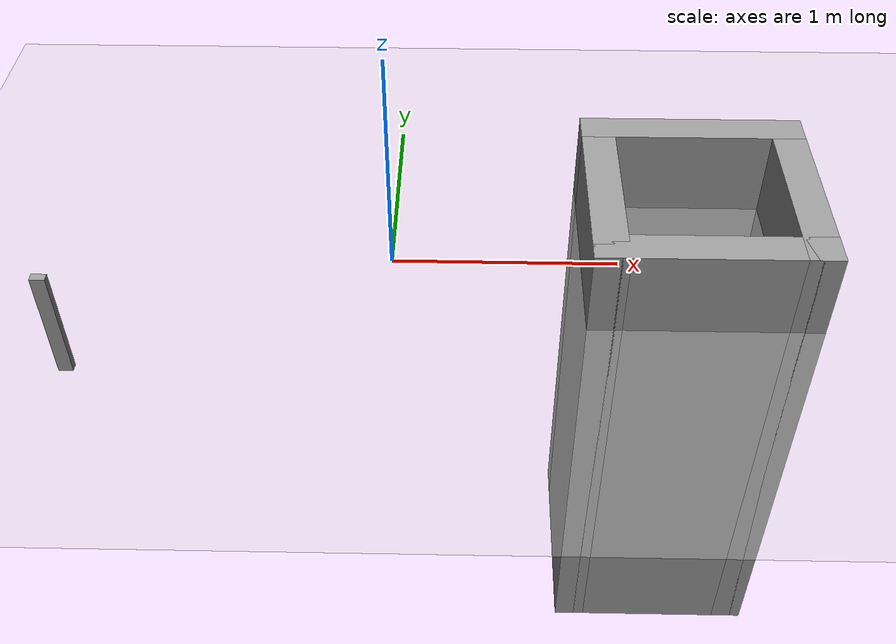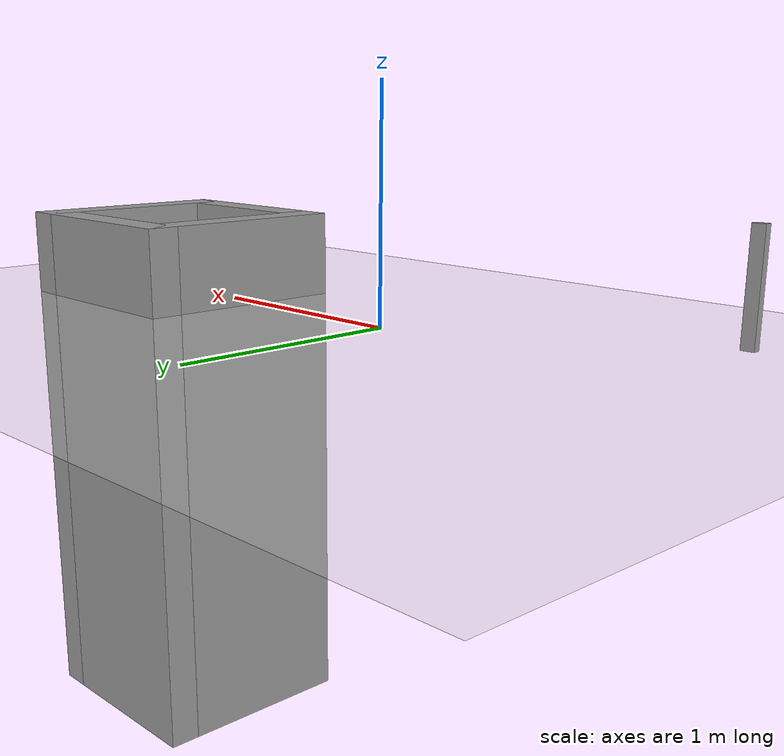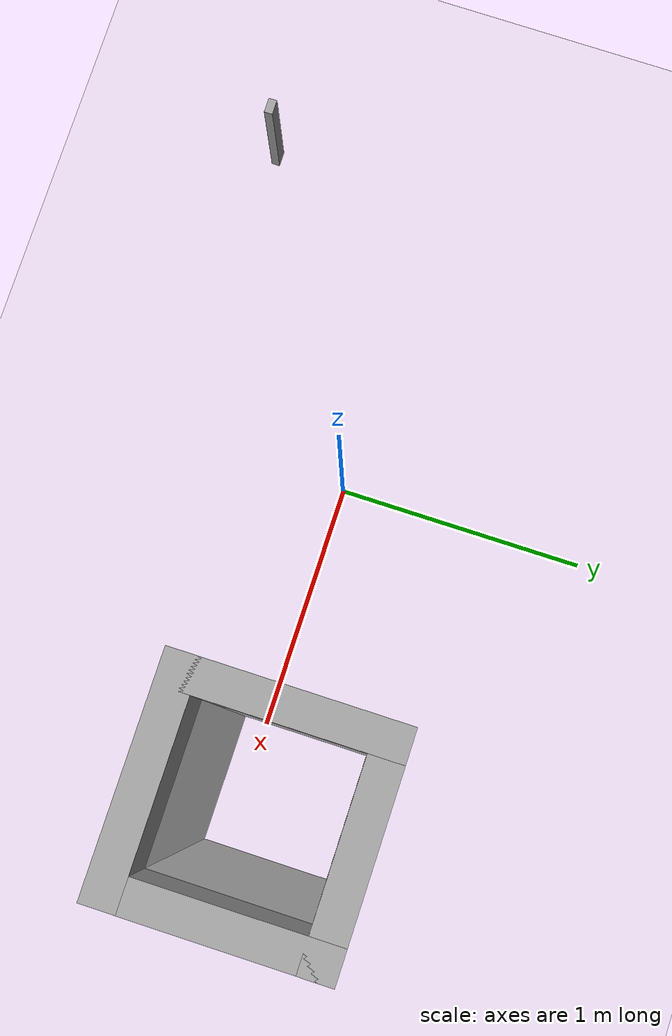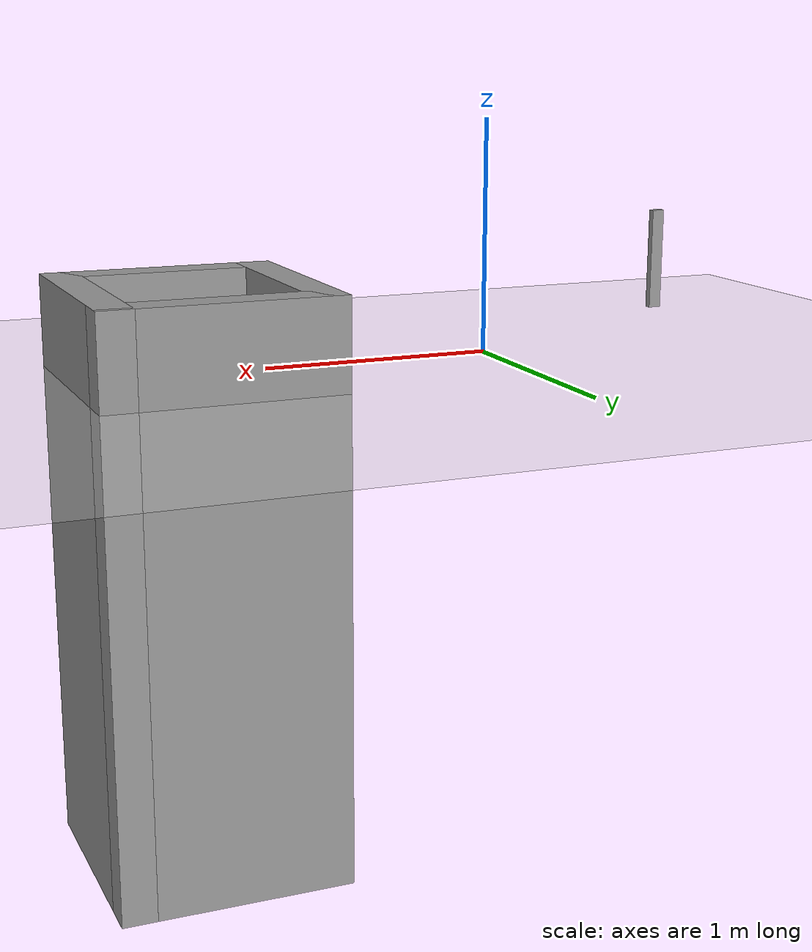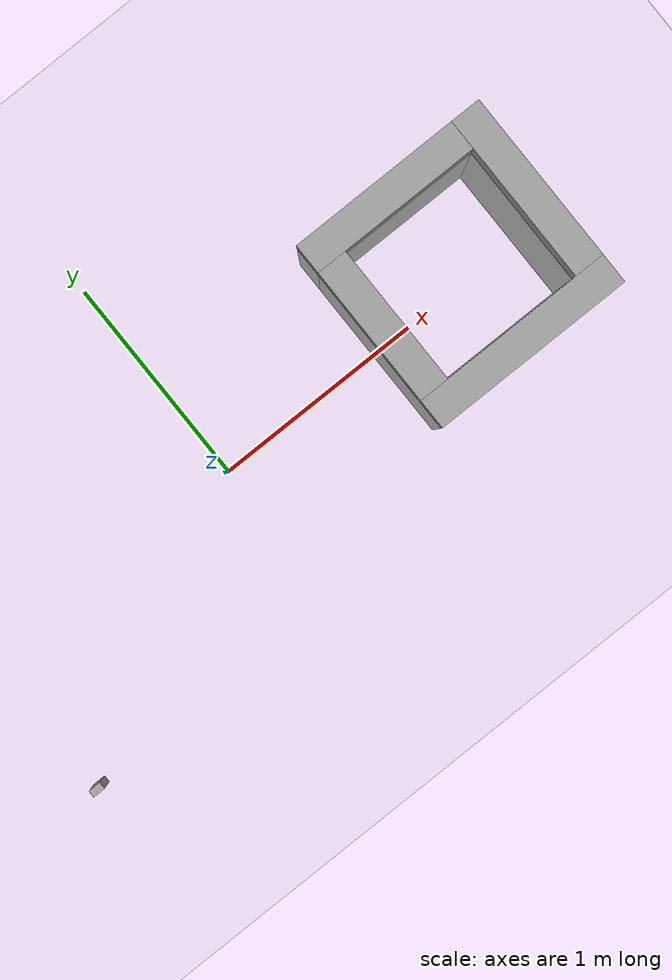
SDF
<sdf version="1.6">
 <world name="default">
  <light name="sun" type="directional">
   <pose>0 0 10 0 -0 0</pose>
   <diffuse>0.8 0.8 0.8 1</diffuse>
   <specular>0.2 0.2 0.2 1</specular>
   <attenuation>
    <range>1000</range>
    <constant>0.9</constant>
    <linear>0.01</linear>
    <quadratic>0.001</quadratic>
   </attenuation>
   <direction>-0.5 0.1 -0.9</direction>
  </light>
  <model name="ground_plane">
   <static>1</static>
   <link name="link">
    <collision name="collision">
     <geometry><plane><normal>0 0 1</normal><size>100 100</size></plane></geometry>
     <surface>
      <contact><collide_bitmask>65535</collide_bitmask></contact>
      <friction><ode><mu>100</mu><mu2>50</mu2></ode></friction>
     </surface>
    </collision>
    <visual name="visual">
     <cast_shadows>0</cast_shadows>
     <geometry><plane><normal>0 0 1</normal><size>100 100</size></plane></geometry>
     <material>
      <script><uri>file://media/materials/scripts/gazebo.material</uri><name>Gazebo/Grey</name></script>
     </material>
    </visual>
   </link>
  </model>
  <gravity>0 0 -9.8</gravity>
  <magnetic_field>6e-06 2.3e-05 -4.2e-05</magnetic_field>
  <atmosphere type="adiabatic"/>
  <physics name="default_physics" default="0" type="ode">
   <max_step_size>0.001</max_step_size>
   <real_time_factor>1</real_time_factor>
   <real_time_update_rate>1000</real_time_update_rate>
  </physics>
  <scene><ambient>0.4 0.4 0.4 1</ambient><background>0.7 0.7 0.7 1</background><shadows>1</shadows></scene>
  <audio><device>default</device></audio>
  <spherical_coordinates>
   <surface_model>EARTH_WGS84</surface_model>
   <latitude_deg>0</latitude_deg>
   <longitude_deg>0</longitude_deg>
   <elevation>0</elevation>
   <heading_deg>0</heading_deg>
  </spherical_coordinates>
  <model name="walls1">
   <pose>1.33717 0.070536 -2.11472 0 -0 0</pose>
   <link name="Wall_0">
    <collision name="Wall_0_Collision">
     <geometry><box><size>1 0.15 2.5</size></box></geometry>
     <pose>0 0 1.25 0 -0 0</pose>
    </collision>
    <visual name="Wall_0_Visual">
     <pose>0 0 1.25 0 -0 0</pose>
     <geometry><box><size>1 0.15 2.5</size></box></geometry>
     <material>
      <script><uri>file://media/materials/scripts/gazebo.material</uri><name>Gazebo/Grey</name></script>
      <ambient>1 1 1 1</ambient>
     </material>
     <meta><layer>0</layer></meta>
    </visual>
    <pose>-0 -0.425 0 0 -0 0</pose>
   </link>
   <link name="Wall_1">
    <collision name="Wall_1_Collision">
     <geometry><box><size>1 0.15 2.5</size></box></geometry>
     <pose>0 0 1.25 0 -0 0</pose>
    </collision>
    <visual name="Wall_1_Visual">
     <pose>0 0 1.25 0 -0 0</pose>
     <geometry><box><size>1 0.15 2.5</size></box></geometry>
     <material>
      <script><uri>file://media/materials/scripts/gazebo.material</uri><name>Gazebo/Grey</name></script>
      <ambient>1 1 1 1</ambient>
     </material>
     <meta><layer>0</layer></meta>
    </visual>
    <pose>0.425 0 0 0 -0 1.5708</pose>
   </link>
   <link name="Wall_2">
    <collision name="Wall_2_Collision">
     <geometry><box><size>1 0.15 2.5</size></box></geometry>
     <pose>0 0 1.25 0 -0 0</pose>
    </collision>
    <visual name="Wall_2_Visual">
     <pose>0 0 1.25 0 -0 0</pose>
     <geometry><box><size>1 0.15 2.5</size></box></geometry>
     <material>
      <script><uri>file://media/materials/scripts/gazebo.material</uri><name>Gazebo/Grey</name></script>
      <ambient>1 1 1 1</ambient>
     </material>
     <meta><layer>0</layer></meta>
    </visual>
    <pose>-0 0.425 0 0 -0 3.14159</pose>
   </link>
   <link name="Wall_3">
    <collision name="Wall_3_Collision">
     <geometry><box><size>1 0.15 2.5</size></box></geometry>
     <pose>0 0 1.25 0 -0 0</pose>
    </collision>
    <visual name="Wall_3_Visual">
     <pose>0 0 1.25 0 -0 0</pose>
     <geometry><box><size>1 0.15 2.5</size></box></geometry>
     <material>
      <script><uri>file://media/materials/scripts/gazebo.material</uri><name>Gazebo/Grey</name></script>
      <ambient>1 1 1 1</ambient>
     </material>
     <meta><layer>0</layer></meta>
    </visual>
    <pose>-0.425 0 0 0 -0 -1.5708</pose>
   </link>
   <static>1</static>
  </model>
  <model name="blockv">
   <link name="link_0">
    <inertial>
     <mass>0.00910653</mass>
     <inertia>
      <ixx>1.85831e-05</ixx>
      <ixy>0</ixy>
      <ixz>0</ixz>
      <iyy>1.87774e-05</iyy>
      <iyz>0</iyz>
      <izz>3.78974e-07</izz>
     </inertia>
    </inertial>
    <pose>0 -4e-06 0 0 -0 0</pose>
    <visual name="visual">
     <geometry><box><size>0.059683 0.033874 0.479355</size></box></geometry>
     <material>
      <lighting>1</lighting>
      <script><uri>file://media/materials/scripts/gazebo.material</uri><name>Gazebo/Grey</name></script>
     </material>
    </visual>
    <collision name="collision">
     <geometry><box><size>0.059683 0.033874 0.479355</size></box></geometry>
     <surface>
      <friction>
       <ode><mu>1</mu><mu2>1</mu2><fdir1>0 0 0</fdir1><slip1>0</slip1><slip2>0</slip2></ode>
       <torsional>
        <coefficient>1</coefficient>
        <patch_radius>0</patch_radius>
        <surface_radius>0</surface_radius>
        <use_patch_radius>1</use_patch_radius>
        <ode><slip>0</slip></ode>
       </torsional>
      </friction>
      <bounce><restitution_coefficient>0</restitution_coefficient><threshold>1e+06</threshold></bounce>
      <contact>
       <collide_without_contact>0</collide_without_contact>
       <collide_without_contact_bitmask>1</collide_without_contact_bitmask>
       <collide_bitmask>1</collide_bitmask>
       <ode>
        <soft_cfm>0</soft_cfm>
        <soft_erp>0.2</soft_erp>
        <kp>1e+13</kp>
        <kd>1</kd>
        <max_vel>0.01</max_vel>
        <min_depth>0</min_depth>
       </ode>
       <bullet>
        <split_impulse>1</split_impulse>
        <split_impulse_penetration_threshold>-0.01</split_impulse_penetration_threshold>
        <soft_cfm>0</soft_cfm>
        <soft_erp>0.2</soft_erp>
        <kp>1e+13</kp>
        <kd>1</kd>
       </bullet>
      </contact>
     </surface>
    </collision>
   </link>
   <static>0</static>
   <pose>-1.27553 -0.709549 0.247301 0 -0 0</pose>
  </model>
 </world>
</sdf>
